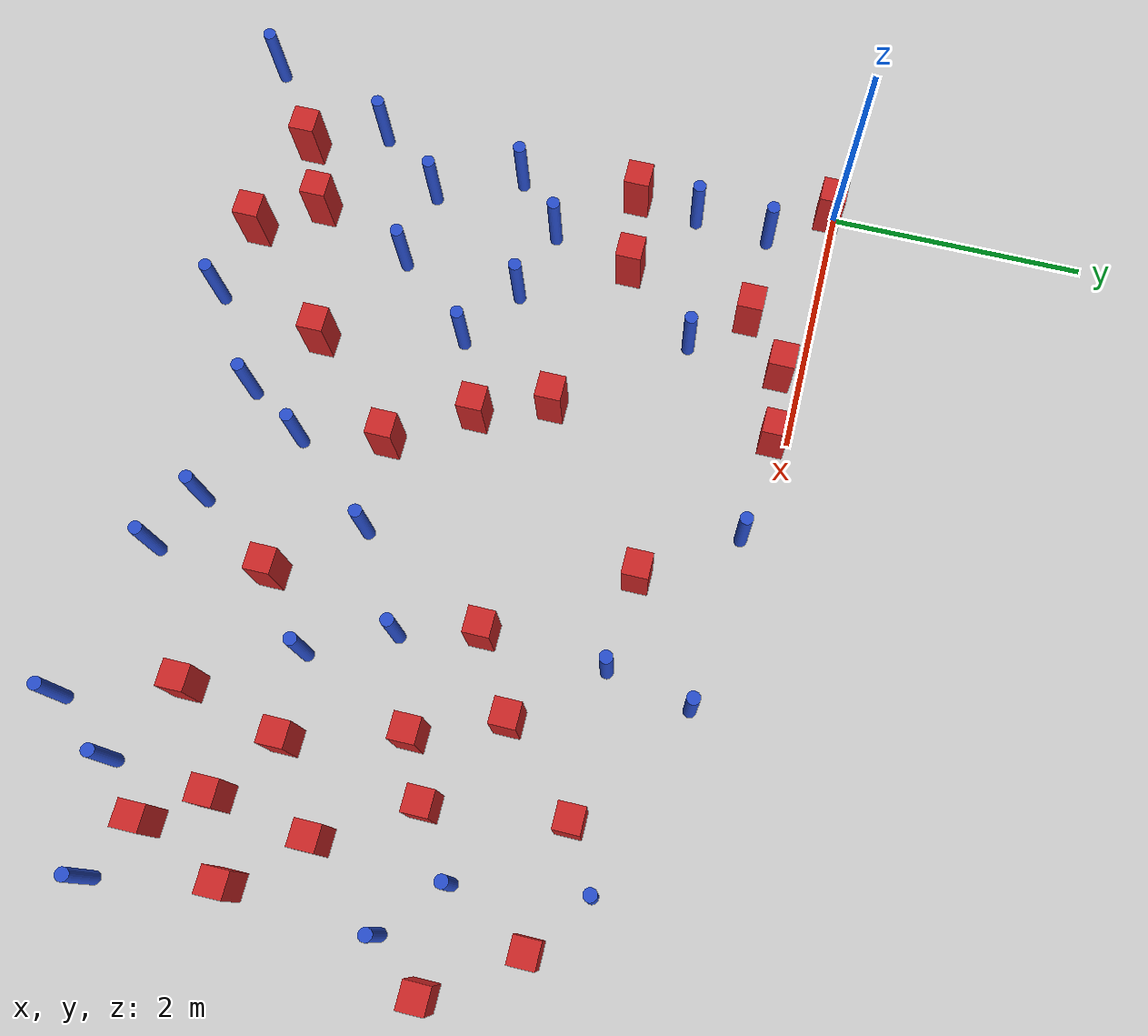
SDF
<sdf version="1.6">
 <world name="default">
  <model name="ground_plane">
   <static>1</static>
   <link name="link">
    <collision name="collision">
     <geometry><plane><normal>0 0 1</normal><size>100 100</size></plane></geometry>
     <surface><friction><ode><mu>100</mu><mu2>50</mu2></ode></friction></surface>
    </collision>
    <visual name="visual">
     <cast_shadows>0</cast_shadows>
     <geometry><plane><normal>0 0 1</normal><size>100 100</size></plane></geometry>
     <material>
      <ambient>1.0 1.0 1.0 1.0</ambient>
      <diffuse>0.8 0.8 0.8 1.0</diffuse>
      <specular>0.01 0.01 0.01 1.000000</specular>
     </material>
    </visual>
   </link>
  </model>
  <model name="square_post_obstacle0">
   <static>true</static>
   <pose>2.69655545007 -2.96752872048 -6.11067671241e-07 -5.50515727128e-06 -8.79689657224e-07 2.37013304536e-05</pose>
   <link name="link">
    <pose>0 0 0.25 0 -0 0</pose>
    <inertial>
     <mass>100</mass>
     <inertia>
      <ixx>0.166667</ixx>
      <ixy>0</ixy>
      <ixz>0</ixz>
      <iyy>0.166667</iyy>
      <iyz>0</iyz>
      <izz>0.166667</izz>
     </inertia>
    </inertial>
    <collision name="collision"><geometry><box><size>.2 .2 .5</size></box></geometry></collision>
    <visual name="visual">
     <geometry><box><size>.2 .2 .5</size></box></geometry>
     <material>
      <script><name>Gazebo/Red</name><uri>file://media/materials/scripts/gazebo.material</uri></script>
     </material>
    </visual>
   </link>
  </model>
  <model name="pole_obstacle0">
   <static>true</static>
   <pose>3.41426203181 -2.9291953358 -9.47619616065e-06 5.49618799737e-07 2.36310414051e-07 -1.55090534807e-07</pose>
   <link name="link">
    <pose>0 0 0.3 0 -0 0</pose>
    <inertial>
     <mass>1</mass>
     <inertia><ixx>0.145833</ixx><ixy>0</ixy><ixz>0</ixz><iyy>0.145833</iyy><iyz>0</iyz><izz>0.125</izz></inertia>
    </inertial>
    <collision name="collision">
     <geometry><cylinder><radius>0.05</radius><length>.6</length></cylinder></geometry>
    </collision>
    <visual name="visual">
     <geometry><cylinder><radius>0.05</radius><length>.6</length></cylinder></geometry>
     <material>
      <script><name>Gazebo/Blue</name><uri>file://media/materials/scripts/gazebo.material</uri></script>
     </material>
    </visual>
   </link>
  </model>
  <model name="square_post_obstacle3">
   <static>true</static>
   <pose>4.54777788087 -1.52727950527 -6.11067671241e-07 -5.50515727128e-06 -8.79689657224e-07 2.37013304536e-05</pose>
   <link name="link">
    <pose>0 0 0.25 0 -0 0</pose>
    <inertial>
     <mass>100</mass>
     <inertia>
      <ixx>0.166667</ixx>
      <ixy>0</ixy>
      <ixz>0</ixz>
      <iyy>0.166667</iyy>
      <iyz>0</iyz>
      <izz>0.166667</izz>
     </inertia>
    </inertial>
    <collision name="collision"><geometry><box><size>.2 .2 .5</size></box></geometry></collision>
    <visual name="visual">
     <geometry><box><size>.2 .2 .5</size></box></geometry>
     <material>
      <script><name>Gazebo/Red</name><uri>file://media/materials/scripts/gazebo.material</uri></script>
     </material>
    </visual>
   </link>
  </model>
  <model name="square_post_obstacle5">
   <static>true</static>
   <pose>5.80305898445 -3.83086714012 -6.11067671241e-07 -5.50515727128e-06 -8.79689657224e-07 2.37013304536e-05</pose>
   <link name="link">
    <pose>0 0 0.25 0 -0 0</pose>
    <inertial>
     <mass>100</mass>
     <inertia>
      <ixx>0.166667</ixx>
      <ixy>0</ixy>
      <ixz>0</ixz>
      <iyy>0.166667</iyy>
      <iyz>0</iyz>
      <izz>0.166667</izz>
     </inertia>
    </inertial>
    <collision name="collision"><geometry><box><size>.2 .2 .5</size></box></geometry></collision>
    <visual name="visual">
     <geometry><box><size>.2 .2 .5</size></box></geometry>
     <material>
      <script><name>Gazebo/Red</name><uri>file://media/materials/scripts/gazebo.material</uri></script>
     </material>
    </visual>
   </link>
  </model>
  <model name="square_post_obstacle6">
   <static>true</static>
   <pose>5.25804633106 -1.95155179132 -6.11067671241e-07 -5.50515727128e-06 -8.79689657224e-07 2.37013304536e-05</pose>
   <link name="link">
    <pose>0 0 0.25 0 -0 0</pose>
    <inertial>
     <mass>100</mass>
     <inertia>
      <ixx>0.166667</ixx>
      <ixy>0</ixy>
      <ixz>0</ixz>
      <iyy>0.166667</iyy>
      <iyz>0</iyz>
      <izz>0.166667</izz>
     </inertia>
    </inertial>
    <collision name="collision"><geometry><box><size>.2 .2 .5</size></box></geometry></collision>
    <visual name="visual">
     <geometry><box><size>.2 .2 .5</size></box></geometry>
     <material>
      <script><name>Gazebo/Red</name><uri>file://media/materials/scripts/gazebo.material</uri></script>
     </material>
    </visual>
   </link>
  </model>
  <model name="square_post_obstacle11">
   <static>true</static>
   <pose>5.52812265064 -3.40061100527 -6.11067671241e-07 -5.50515727128e-06 -8.79689657224e-07 2.37013304536e-05</pose>
   <link name="link">
    <pose>0 0 0.25 0 -0 0</pose>
    <inertial>
     <mass>100</mass>
     <inertia>
      <ixx>0.166667</ixx>
      <ixy>0</ixy>
      <ixz>0</ixz>
      <iyy>0.166667</iyy>
      <iyz>0</iyz>
      <izz>0.166667</izz>
     </inertia>
    </inertial>
    <collision name="collision"><geometry><box><size>.2 .2 .5</size></box></geometry></collision>
    <visual name="visual">
     <geometry><box><size>.2 .2 .5</size></box></geometry>
     <material>
      <script><name>Gazebo/Red</name><uri>file://media/materials/scripts/gazebo.material</uri></script>
     </material>
    </visual>
   </link>
  </model>
  <model name="square_post_obstacle16">
   <static>true</static>
   <pose>3.88686562413 -3.51782488606 -6.11067671241e-07 -5.50515727128e-06 -8.79689657224e-07 2.37013304536e-05</pose>
   <link name="link">
    <pose>0 0 0.25 0 -0 0</pose>
    <inertial>
     <mass>100</mass>
     <inertia>
      <ixx>0.166667</ixx>
      <ixy>0</ixy>
      <ixz>0</ixz>
      <iyy>0.166667</iyy>
      <iyz>0</iyz>
      <izz>0.166667</izz>
     </inertia>
    </inertial>
    <collision name="collision"><geometry><box><size>.2 .2 .5</size></box></geometry></collision>
    <visual name="visual">
     <geometry><box><size>.2 .2 .5</size></box></geometry>
     <material>
      <script><name>Gazebo/Red</name><uri>file://media/materials/scripts/gazebo.material</uri></script>
     </material>
    </visual>
   </link>
  </model>
  <model name="pole_obstacle17">
   <static>true</static>
   <pose>1.26234409407 -2.3121357814 -9.47619616065e-06 5.49618799737e-07 2.36310414062e-07 -1.55090534798e-07</pose>
   <link name="link">
    <pose>0 0 0.3 0 -0 0</pose>
    <inertial>
     <mass>1</mass>
     <inertia><ixx>0.145833</ixx><ixy>0</ixy><ixz>0</ixz><iyy>0.145833</iyy><iyz>0</iyz><izz>0.125</izz></inertia>
    </inertial>
    <collision name="collision">
     <geometry><cylinder><radius>0.05</radius><length>.6</length></cylinder></geometry>
    </collision>
    <visual name="visual">
     <geometry><cylinder><radius>0.05</radius><length>.6</length></cylinder></geometry>
     <material>
      <script><name>Gazebo/Blue</name><uri>file://media/materials/scripts/gazebo.material</uri></script>
     </material>
    </visual>
   </link>
  </model>
  <model name="pole_obstacle25">
   <static>true</static>
   <pose>5.11120807387 -4.71649495453 -9.47619616065e-06 5.49618799737e-07 2.36310414037e-07 -1.55090534814e-07</pose>
   <link name="link">
    <pose>0 0 0.3 0 -0 0</pose>
    <inertial>
     <mass>1</mass>
     <inertia><ixx>0.145833</ixx><ixy>0</ixy><ixz>0</ixz><iyy>0.145833</iyy><iyz>0</iyz><izz>0.125</izz></inertia>
    </inertial>
    <collision name="collision">
     <geometry><cylinder><radius>0.05</radius><length>.6</length></cylinder></geometry>
    </collision>
    <visual name="visual">
     <geometry><cylinder><radius>0.05</radius><length>.6</length></cylinder></geometry>
     <material>
      <script><name>Gazebo/Blue</name><uri>file://media/materials/scripts/gazebo.material</uri></script>
     </material>
    </visual>
   </link>
  </model>
  <model name="square_post_obstacle34">
   <static>true</static>
   <pose>1.99524082657 -3.71207581589 -6.11067671241e-07 -5.50515727128e-06 -8.79689657224e-07 2.37013304536e-05</pose>
   <link name="link">
    <pose>0 0 0.25 0 -0 0</pose>
    <inertial>
     <mass>100</mass>
     <inertia>
      <ixx>0.166667</ixx>
      <ixy>0</ixy>
      <ixz>0</ixz>
      <iyy>0.166667</iyy>
      <iyz>0</iyz>
      <izz>0.166667</izz>
     </inertia>
    </inertial>
    <collision name="collision"><geometry><box><size>.2 .2 .5</size></box></geometry></collision>
    <visual name="visual">
     <geometry><box><size>.2 .2 .5</size></box></geometry>
     <material>
      <script><name>Gazebo/Red</name><uri>file://media/materials/scripts/gazebo.material</uri></script>
     </material>
    </visual>
   </link>
  </model>
  <model name="pole_obstacle41">
   <static>true</static>
   <pose>2.52982006648 -4.10337523214 -9.47619616065e-06 5.49618799738e-07 2.3631041406e-07 -1.55090534801e-07</pose>
   <link name="link">
    <pose>0 0 0.3 0 -0 0</pose>
    <inertial>
     <mass>1</mass>
     <inertia><ixx>0.145833</ixx><ixy>0</ixy><ixz>0</ixz><iyy>0.145833</iyy><iyz>0</iyz><izz>0.125</izz></inertia>
    </inertial>
    <collision name="collision">
     <geometry><cylinder><radius>0.05</radius><length>.6</length></cylinder></geometry>
    </collision>
    <visual name="visual">
     <geometry><cylinder><radius>0.05</radius><length>.6</length></cylinder></geometry>
     <material>
      <script><name>Gazebo/Blue</name><uri>file://media/materials/scripts/gazebo.material</uri></script>
     </material>
    </visual>
   </link>
  </model>
  <model name="pole_obstacle44">
   <static>true</static>
   <pose>-0.271007146053 -4.75467692639 -9.47619616065e-06 5.49618799738e-07 2.36310414067e-07 -1.55090534795e-07</pose>
   <link name="link">
    <pose>0 0 0.3 0 -0 0</pose>
    <inertial>
     <mass>1</mass>
     <inertia><ixx>0.145833</ixx><ixy>0</ixy><ixz>0</ixz><iyy>0.145833</iyy><iyz>0</iyz><izz>0.125</izz></inertia>
    </inertial>
    <collision name="collision">
     <geometry><cylinder><radius>0.05</radius><length>.6</length></cylinder></geometry>
    </collision>
    <visual name="visual">
     <geometry><cylinder><radius>0.05</radius><length>.6</length></cylinder></geometry>
     <material>
      <script><name>Gazebo/Blue</name><uri>file://media/materials/scripts/gazebo.material</uri></script>
     </material>
    </visual>
   </link>
  </model>
  <model name="pole_obstacle49">
   <static>true</static>
   <pose>0.270599203035 -2.53424347779 -9.47619616065e-06 5.49618799737e-07 2.36310414065e-07 -1.55090534798e-07</pose>
   <link name="link">
    <pose>0 0 0.3 0 -0 0</pose>
    <inertial>
     <mass>1</mass>
     <inertia><ixx>0.145833</ixx><ixy>0</ixy><ixz>0</ixz><iyy>0.145833</iyy><iyz>0</iyz><izz>0.125</izz></inertia>
    </inertial>
    <collision name="collision">
     <geometry><cylinder><radius>0.05</radius><length>.6</length></cylinder></geometry>
    </collision>
    <visual name="visual">
     <geometry><cylinder><radius>0.05</radius><length>.6</length></cylinder></geometry>
     <material>
      <script><name>Gazebo/Blue</name><uri>file://media/materials/scripts/gazebo.material</uri></script>
     </material>
    </visual>
   </link>
  </model>
  <model name="square_post_obstacle52">
   <static>true</static>
   <pose>6.03663099695 -1.00682913807 -6.11067671241e-07 -5.50515727128e-06 -8.79689657224e-07 2.37013304536e-05</pose>
   <link name="link">
    <pose>0 0 0.25 0 -0 0</pose>
    <inertial>
     <mass>100</mass>
     <inertia>
      <ixx>0.166667</ixx>
      <ixy>0</ixy>
      <ixz>0</ixz>
      <iyy>0.166667</iyy>
      <iyz>0</iyz>
      <izz>0.166667</izz>
     </inertia>
    </inertial>
    <collision name="collision"><geometry><box><size>.2 .2 .5</size></box></geometry></collision>
    <visual name="visual">
     <geometry><box><size>.2 .2 .5</size></box></geometry>
     <material>
      <script><name>Gazebo/Red</name><uri>file://media/materials/scripts/gazebo.material</uri></script>
     </material>
    </visual>
   </link>
  </model>
  <model name="pole_obstacle51">
   <static>true</static>
   <pose>3.45128420298 -4.19065386213 -9.47619616065e-06 5.49618799738e-07 2.3631041406e-07 -1.55090534801e-07</pose>
   <link name="link">
    <pose>0 0 0.3 0 -0 0</pose>
    <inertial>
     <mass>1</mass>
     <inertia><ixx>0.145833</ixx><ixy>0</ixy><ixz>0</ixz><iyy>0.145833</iyy><iyz>0</iyz><izz>0.125</izz></inertia>
    </inertial>
    <collision name="collision">
     <geometry><cylinder><radius>0.05</radius><length>.6</length></cylinder></geometry>
    </collision>
    <visual name="visual">
     <geometry><cylinder><radius>0.05</radius><length>.6</length></cylinder></geometry>
     <material>
      <script><name>Gazebo/Blue</name><uri>file://media/materials/scripts/gazebo.material</uri></script>
     </material>
    </visual>
   </link>
  </model>
  <model name="pole_obstacle53">
   <static>true</static>
   <pose>1.80866382797 -4.60093404729 -9.47619616065e-06 5.49618799737e-07 2.36310414061e-07 -1.550905348e-07</pose>
   <link name="link">
    <pose>0 0 0.3 0 -0 0</pose>
    <inertial>
     <mass>1</mass>
     <inertia><ixx>0.145833</ixx><ixy>0</ixy><ixz>0</ixz><iyy>0.145833</iyy><iyz>0</iyz><izz>0.125</izz></inertia>
    </inertial>
    <collision name="collision">
     <geometry><cylinder><radius>0.05</radius><length>.6</length></cylinder></geometry>
    </collision>
    <visual name="visual">
     <geometry><cylinder><radius>0.05</radius><length>.6</length></cylinder></geometry>
     <material>
      <script><name>Gazebo/Blue</name><uri>file://media/materials/scripts/gazebo.material</uri></script>
     </material>
    </visual>
   </link>
  </model>
  <model name="pole_obstacle56">
   <static>true</static>
   <pose>5.58508234664 -0.667188749016 -9.47619616065e-06 5.49618799737e-07 2.36310414061e-07 -1.550905348e-07</pose>
   <link name="link">
    <pose>0 0 0.3 0 -0 0</pose>
    <inertial>
     <mass>1</mass>
     <inertia><ixx>0.145833</ixx><ixy>0</ixy><ixz>0</ixz><iyy>0.145833</iyy><iyz>0</iyz><izz>0.125</izz></inertia>
    </inertial>
    <collision name="collision">
     <geometry><cylinder><radius>0.05</radius><length>.6</length></cylinder></geometry>
    </collision>
    <visual name="visual">
     <geometry><cylinder><radius>0.05</radius><length>.6</length></cylinder></geometry>
     <material>
      <script><name>Gazebo/Blue</name><uri>file://media/materials/scripts/gazebo.material</uri></script>
     </material>
    </visual>
   </link>
  </model>
  <model name="pole_obstacle63">
   <static>true</static>
   <pose>1.1900801222 -3.26759631073 -9.47619616065e-06 5.49618799737e-07 2.36310414062e-07 -1.55090534798e-07</pose>
   <link name="link">
    <pose>0 0 0.3 0 -0 0</pose>
    <inertial>
     <mass>1</mass>
     <inertia><ixx>0.145833</ixx><ixy>0</ixy><ixz>0</ixz><iyy>0.145833</iyy><iyz>0</iyz><izz>0.125</izz></inertia>
    </inertial>
    <collision name="collision">
     <geometry><cylinder><radius>0.05</radius><length>.6</length></cylinder></geometry>
    </collision>
    <visual name="visual">
     <geometry><cylinder><radius>0.05</radius><length>.6</length></cylinder></geometry>
     <material>
      <script><name>Gazebo/Blue</name><uri>file://media/materials/scripts/gazebo.material</uri></script>
     </material>
    </visual>
   </link>
  </model>
  <model name="square_post_obstacle66">
   <static>true</static>
   <pose>6.47132975867 -1.6350133772 -6.11067671241e-07 -5.50515727128e-06 -8.79689657224e-07 2.37013304536e-05</pose>
   <link name="link">
    <pose>0 0 0.25 0 -0 0</pose>
    <inertial>
     <mass>100</mass>
     <inertia>
      <ixx>0.166667</ixx>
      <ixy>0</ixy>
      <ixz>0</ixz>
      <iyy>0.166667</iyy>
      <iyz>0</iyz>
      <izz>0.166667</izz>
     </inertia>
    </inertial>
    <collision name="collision"><geometry><box><size>.2 .2 .5</size></box></geometry></collision>
    <visual name="visual">
     <geometry><box><size>.2 .2 .5</size></box></geometry>
     <material>
      <script><name>Gazebo/Red</name><uri>file://media/materials/scripts/gazebo.material</uri></script>
     </material>
    </visual>
   </link>
  </model>
  <model name="square_post_obstacle70">
   <static>true</static>
   <pose>0.890267785708 -4.03336982815 -6.11067671241e-07 -5.50515727128e-06 -8.79689657224e-07 2.37013304536e-05</pose>
   <link name="link">
    <pose>0 0 0.25 0 -0 0</pose>
    <inertial>
     <mass>100</mass>
     <inertia>
      <ixx>0.166667</ixx>
      <ixy>0</ixy>
      <ixz>0</ixz>
      <iyy>0.166667</iyy>
      <iyz>0</iyz>
      <izz>0.166667</izz>
     </inertia>
    </inertial>
    <collision name="collision"><geometry><box><size>.2 .2 .5</size></box></geometry></collision>
    <visual name="visual">
     <geometry><box><size>.2 .2 .5</size></box></geometry>
     <material>
      <script><name>Gazebo/Red</name><uri>file://media/materials/scripts/gazebo.material</uri></script>
     </material>
    </visual>
   </link>
  </model>
  <model name="pole_obstacle68">
   <static>true</static>
   <pose>4.12603982861 -2.48367519057 -9.47619616065e-06 5.49618799738e-07 2.36310414051e-07 -1.55090534805e-07</pose>
   <link name="link">
    <pose>0 0 0.3 0 -0 0</pose>
    <inertial>
     <mass>1</mass>
     <inertia><ixx>0.145833</ixx><ixy>0</ixy><ixz>0</ixz><iyy>0.145833</iyy><iyz>0</iyz><izz>0.125</izz></inertia>
    </inertial>
    <collision name="collision">
     <geometry><cylinder><radius>0.05</radius><length>.6</length></cylinder></geometry>
    </collision>
    <visual name="visual">
     <geometry><cylinder><radius>0.05</radius><length>.6</length></cylinder></geometry>
     <material>
      <script><name>Gazebo/Blue</name><uri>file://media/materials/scripts/gazebo.material</uri></script>
     </material>
    </visual>
   </link>
  </model>
  <model name="pole_obstacle78">
   <static>true</static>
   <pose>2.8241408961 -0.188368687023 -9.47619616065e-06 5.49618799737e-07 2.36310414076e-07 -1.55090534792e-07</pose>
   <link name="link">
    <pose>0 0 0.3 0 -0 0</pose>
    <inertial>
     <mass>1</mass>
     <inertia><ixx>0.145833</ixx><ixy>0</ixy><ixz>0</ixz><iyy>0.145833</iyy><iyz>0</iyz><izz>0.125</izz></inertia>
    </inertial>
    <collision name="collision">
     <geometry><cylinder><radius>0.05</radius><length>.6</length></cylinder></geometry>
    </collision>
    <visual name="visual">
     <geometry><cylinder><radius>0.05</radius><length>.6</length></cylinder></geometry>
     <material>
      <script><name>Gazebo/Blue</name><uri>file://media/materials/scripts/gazebo.material</uri></script>
     </material>
    </visual>
   </link>
  </model>
  <model name="square_post_obstacle78">
   <static>true</static>
   <pose>5.65437554302 -2.63223949745 -6.11067671241e-07 -5.50515727128e-06 -8.79689657224e-07 2.37013304536e-05</pose>
   <link name="link">
    <pose>0 0 0.25 0 -0 0</pose>
    <inertial>
     <mass>100</mass>
     <inertia>
      <ixx>0.166667</ixx>
      <ixy>0</ixy>
      <ixz>0</ixz>
      <iyy>0.166667</iyy>
      <iyz>0</iyz>
      <izz>0.166667</izz>
     </inertia>
    </inertial>
    <collision name="collision"><geometry><box><size>.2 .2 .5</size></box></geometry></collision>
    <visual name="visual">
     <geometry><box><size>.2 .2 .5</size></box></geometry>
     <material>
      <script><name>Gazebo/Red</name><uri>file://media/materials/scripts/gazebo.material</uri></script>
     </material>
    </visual>
   </link>
  </model>
  <model name="square_post_obstacle83">
   <static>true</static>
   <pose>1.18338279445 -4.48964984773 -6.11067671241e-07 -5.50515727128e-06 -8.79689657224e-07 2.37013304536e-05</pose>
   <link name="link">
    <pose>0 0 0.25 0 -0 0</pose>
    <inertial>
     <mass>100</mass>
     <inertia>
      <ixx>0.166667</ixx>
      <ixy>0</ixy>
      <ixz>0</ixz>
      <iyy>0.166667</iyy>
      <iyz>0</iyz>
      <izz>0.166667</izz>
     </inertia>
    </inertial>
    <collision name="collision"><geometry><box><size>.2 .2 .5</size></box></geometry></collision>
    <visual name="visual">
     <geometry><box><size>.2 .2 .5</size></box></geometry>
     <material>
      <script><name>Gazebo/Red</name><uri>file://media/materials/scripts/gazebo.material</uri></script>
     </material>
    </visual>
   </link>
  </model>
  <model name="pole_obstacle100">
   <static>true</static>
   <pose>4.02866962804 -0.93376653429 -9.47619616065e-06 5.49618799738e-07 2.36310414072e-07 -1.55090534796e-07</pose>
   <link name="link">
    <pose>0 0 0.3 0 -0 0</pose>
    <inertial>
     <mass>1</mass>
     <inertia><ixx>0.145833</ixx><ixy>0</ixy><ixz>0</ixz><iyy>0.145833</iyy><iyz>0</iyz><izz>0.125</izz></inertia>
    </inertial>
    <collision name="collision">
     <geometry><cylinder><radius>0.05</radius><length>.6</length></cylinder></geometry>
    </collision>
    <visual name="visual">
     <geometry><cylinder><radius>0.05</radius><length>.6</length></cylinder></geometry>
     <material>
      <script><name>Gazebo/Blue</name><uri>file://media/materials/scripts/gazebo.material</uri></script>
     </material>
    </visual>
   </link>
  </model>
  <model name="pole_obstacle103">
   <static>true</static>
   <pose>0.330932705701 -0.492435063334 -9.47619616065e-06 5.49618799737e-07 2.3631041406e-07 -1.55090534801e-07</pose>
   <link name="link">
    <pose>0 0 0.3 0 -0 0</pose>
    <inertial>
     <mass>1</mass>
     <inertia><ixx>0.145833</ixx><ixy>0</ixy><ixz>0</ixz><iyy>0.145833</iyy><iyz>0</iyz><izz>0.125</izz></inertia>
    </inertial>
    <collision name="collision">
     <geometry><cylinder><radius>0.05</radius><length>.6</length></cylinder></geometry>
    </collision>
    <visual name="visual">
     <geometry><cylinder><radius>0.05</radius><length>.6</length></cylinder></geometry>
     <material>
      <script><name>Gazebo/Blue</name><uri>file://media/materials/scripts/gazebo.material</uri></script>
     </material>
    </visual>
   </link>
  </model>
  <model name="pole_obstacle106">
   <static>true</static>
   <pose>0.556680459288 -3.19464624157 -9.47619616065e-06 5.49618799737e-07 2.36310414066e-07 -1.55090534797e-07</pose>
   <link name="link">
    <pose>0 0 0.3 0 -0 0</pose>
    <inertial>
     <mass>1</mass>
     <inertia><ixx>0.145833</ixx><ixy>0</ixy><ixz>0</ixz><iyy>0.145833</iyy><iyz>0</iyz><izz>0.125</izz></inertia>
    </inertial>
    <collision name="collision">
     <geometry><cylinder><radius>0.05</radius><length>.6</length></cylinder></geometry>
    </collision>
    <visual name="visual">
     <geometry><cylinder><radius>0.05</radius><length>.6</length></cylinder></geometry>
     <material>
      <script><name>Gazebo/Blue</name><uri>file://media/materials/scripts/gazebo.material</uri></script>
     </material>
    </visual>
   </link>
  </model>
  <model name="pole_obstacle118">
   <static>true</static>
   <pose>0.6861154543 -2.15564879666 -9.47619616065e-06 5.49618799737e-07 2.36310414066e-07 -1.55090534797e-07</pose>
   <link name="link">
    <pose>0 0 0.3 0 -0 0</pose>
    <inertial>
     <mass>1</mass>
     <inertia><ixx>0.145833</ixx><ixy>0</ixy><ixz>0</ixz><iyy>0.145833</iyy><iyz>0</iyz><izz>0.125</izz></inertia>
    </inertial>
    <collision name="collision">
     <geometry><cylinder><radius>0.05</radius><length>.6</length></cylinder></geometry>
    </collision>
    <visual name="visual">
     <geometry><cylinder><radius>0.05</radius><length>.6</length></cylinder></geometry>
     <material>
      <script><name>Gazebo/Blue</name><uri>file://media/materials/scripts/gazebo.material</uri></script>
     </material>
    </visual>
   </link>
  </model>
  <model name="square_post_obstacle103">
   <static>true</static>
   <pose>2.33784049144 -2.36936704761 -6.11067671241e-07 -5.50515727128e-06 -8.79689657224e-07 2.37013304536e-05</pose>
   <link name="link">
    <pose>0 0 0.25 0 -0 0</pose>
    <inertial>
     <mass>100</mass>
     <inertia>
      <ixx>0.166667</ixx>
      <ixy>0</ixy>
      <ixz>0</ixz>
      <iyy>0.166667</iyy>
      <iyz>0</iyz>
      <izz>0.166667</izz>
     </inertia>
    </inertial>
    <collision name="collision"><geometry><box><size>.2 .2 .5</size></box></geometry></collision>
    <visual name="visual">
     <geometry><box><size>.2 .2 .5</size></box></geometry>
     <material>
      <script><name>Gazebo/Red</name><uri>file://media/materials/scripts/gazebo.material</uri></script>
     </material>
    </visual>
   </link>
  </model>
  <model name="square_post_obstacle105">
   <static>true</static>
   <pose>2.12561929806 -1.82076457471 -6.11067671241e-07 -5.50515727128e-06 -8.79689657224e-07 2.37013304536e-05</pose>
   <link name="link">
    <pose>0 0 0.25 0 -0 0</pose>
    <inertial>
     <mass>100</mass>
     <inertia>
      <ixx>0.166667</ixx>
      <ixy>0</ixy>
      <ixz>0</ixz>
      <iyy>0.166667</iyy>
      <iyz>0</iyz>
      <izz>0.166667</izz>
     </inertia>
    </inertial>
    <collision name="collision"><geometry><box><size>.2 .2 .5</size></box></geometry></collision>
    <visual name="visual">
     <geometry><box><size>.2 .2 .5</size></box></geometry>
     <material>
      <script><name>Gazebo/Red</name><uri>file://media/materials/scripts/gazebo.material</uri></script>
     </material>
    </visual>
   </link>
  </model>
  <model name="square_post_obstacle109">
   <static>true</static>
   <pose>3.30124826271 -0.878200812186 -6.11067671241e-07 -5.50515727128e-06 -8.79689657224e-07 2.37013304536e-05</pose>
   <link name="link">
    <pose>0 0 0.25 0 -0 0</pose>
    <inertial>
     <mass>100</mass>
     <inertia>
      <ixx>0.166667</ixx>
      <ixy>0</ixy>
      <ixz>0</ixz>
      <iyy>0.166667</iyy>
      <iyz>0</iyz>
      <izz>0.166667</izz>
     </inertia>
    </inertial>
    <collision name="collision"><geometry><box><size>.2 .2 .5</size></box></geometry></collision>
    <visual name="visual">
     <geometry><box><size>.2 .2 .5</size></box></geometry>
     <material>
      <script><name>Gazebo/Red</name><uri>file://media/materials/scripts/gazebo.material</uri></script>
     </material>
    </visual>
   </link>
  </model>
  <model name="square_post_obstacle110">
   <static>true</static>
   <pose>5.13230458625 -0.926404389919 -6.11067671241e-07 -5.50515727128e-06 -8.79689657224e-07 2.37013304536e-05</pose>
   <link name="link">
    <pose>0 0 0.25 0 -0 0</pose>
    <inertial>
     <mass>100</mass>
     <inertia>
      <ixx>0.166667</ixx>
      <ixy>0</ixy>
      <ixz>0</ixz>
      <iyy>0.166667</iyy>
      <iyz>0</iyz>
      <izz>0.166667</izz>
     </inertia>
    </inertial>
    <collision name="collision"><geometry><box><size>.2 .2 .5</size></box></geometry></collision>
    <visual name="visual">
     <geometry><box><size>.2 .2 .5</size></box></geometry>
     <material>
      <script><name>Gazebo/Red</name><uri>file://media/materials/scripts/gazebo.material</uri></script>
     </material>
    </visual>
   </link>
  </model>
  <model name="pole_obstacle120">
   <static>true</static>
   <pose>6.26103983973 -4.08631965927 -9.47619616065e-06 5.49618799737e-07 2.36310414037e-07 -1.55090534814e-07</pose>
   <link name="link">
    <pose>0 0 0.3 0 -0 0</pose>
    <inertial>
     <mass>1</mass>
     <inertia><ixx>0.145833</ixx><ixy>0</ixy><ixz>0</ixz><iyy>0.145833</iyy><iyz>0</iyz><izz>0.125</izz></inertia>
    </inertial>
    <collision name="collision">
     <geometry><cylinder><radius>0.05</radius><length>.6</length></cylinder></geometry>
    </collision>
    <visual name="visual">
     <geometry><cylinder><radius>0.05</radius><length>.6</length></cylinder></geometry>
     <material>
      <script><name>Gazebo/Blue</name><uri>file://media/materials/scripts/gazebo.material</uri></script>
     </material>
    </visual>
   </link>
  </model>
  <model name="pole_obstacle122">
   <static>true</static>
   <pose>4.40908479328 -3.10094637195 -9.47619616065e-06 5.49618799738e-07 2.36310414051e-07 -1.55090534805e-07</pose>
   <link name="link">
    <pose>0 0 0.3 0 -0 0</pose>
    <inertial>
     <mass>1</mass>
     <inertia><ixx>0.145833</ixx><ixy>0</ixy><ixz>0</ixz><iyy>0.145833</iyy><iyz>0</iyz><izz>0.125</izz></inertia>
    </inertial>
    <collision name="collision">
     <geometry><cylinder><radius>0.05</radius><length>.6</length></cylinder></geometry>
    </collision>
    <visual name="visual">
     <geometry><cylinder><radius>0.05</radius><length>.6</length></cylinder></geometry>
     <material>
      <script><name>Gazebo/Blue</name><uri>file://media/materials/scripts/gazebo.material</uri></script>
     </material>
    </visual>
   </link>
  </model>
  <model name="pole_obstacle128">
   <static>true</static>
   <pose>1.74630896064 -2.63615672611 -9.47619616065e-06 5.49618799737e-07 2.36310414062e-07 -1.55090534798e-07</pose>
   <link name="link">
    <pose>0 0 0.3 0 -0 0</pose>
    <inertial>
     <mass>1</mass>
     <inertia><ixx>0.145833</ixx><ixy>0</ixy><ixz>0</ixz><iyy>0.145833</iyy><iyz>0</iyz><izz>0.125</izz></inertia>
    </inertial>
    <collision name="collision">
     <geometry><cylinder><radius>0.05</radius><length>.6</length></cylinder></geometry>
    </collision>
    <visual name="visual">
     <geometry><cylinder><radius>0.05</radius><length>.6</length></cylinder></geometry>
     <material>
      <script><name>Gazebo/Blue</name><uri>file://media/materials/scripts/gazebo.material</uri></script>
     </material>
    </visual>
   </link>
  </model>
  <model name="square_post_obstacle118">
   <static>true</static>
   <pose>0.220975902893 -1.58294587684 -6.11067671241e-07 -5.50515727128e-06 -8.79689657224e-07 2.37013304536e-05</pose>
   <link name="link">
    <pose>0 0 0.25 0 -0 0</pose>
    <inertial>
     <mass>100</mass>
     <inertia>
      <ixx>0.166667</ixx>
      <ixy>0</ixy>
      <ixz>0</ixz>
      <iyy>0.166667</iyy>
      <iyz>0</iyz>
      <izz>0.166667</izz>
     </inertia>
    </inertial>
    <collision name="collision"><geometry><box><size>.2 .2 .5</size></box></geometry></collision>
    <visual name="visual">
     <geometry><box><size>.2 .2 .5</size></box></geometry>
     <material>
      <script><name>Gazebo/Red</name><uri>file://media/materials/scripts/gazebo.material</uri></script>
     </material>
    </visual>
   </link>
  </model>
  <model name="pole_obstacle139">
   <static>true</static>
   <pose>4.1655203504 -0.283180113197 -9.47619616065e-06 5.49618799737e-07 2.36310414075e-07 -1.55090534794e-07</pose>
   <link name="link">
    <pose>0 0 0.3 0 -0 0</pose>
    <inertial>
     <mass>1</mass>
     <inertia><ixx>0.145833</ixx><ixy>0</ixy><ixz>0</ixz><iyy>0.145833</iyy><iyz>0</iyz><izz>0.125</izz></inertia>
    </inertial>
    <collision name="collision">
     <geometry><cylinder><radius>0.05</radius><length>.6</length></cylinder></geometry>
    </collision>
    <visual name="visual">
     <geometry><cylinder><radius>0.05</radius><length>.6</length></cylinder></geometry>
     <material>
      <script><name>Gazebo/Blue</name><uri>file://media/materials/scripts/gazebo.material</uri></script>
     </material>
    </visual>
   </link>
  </model>
  <model name="square_post_obstacle130">
   <static>true</static>
   <pose>1.05873128331 -0.501565969235 -6.11067671241e-07 -5.50515727128e-06 -8.79689657224e-07 2.37013304536e-05</pose>
   <link name="link">
    <pose>0 0 0.25 0 -0 0</pose>
    <inertial>
     <mass>100</mass>
     <inertia>
      <ixx>0.166667</ixx>
      <ixy>0</ixy>
      <ixz>0</ixz>
      <iyy>0.166667</iyy>
      <iyz>0</iyz>
      <izz>0.166667</izz>
     </inertia>
    </inertial>
    <collision name="collision"><geometry><box><size>.2 .2 .5</size></box></geometry></collision>
    <visual name="visual">
     <geometry><box><size>.2 .2 .5</size></box></geometry>
     <material>
      <script><name>Gazebo/Red</name><uri>file://media/materials/scripts/gazebo.material</uri></script>
     </material>
    </visual>
   </link>
  </model>
  <model name="pole_obstacle152">
   <static>true</static>
   <pose>0.126690406617 -3.73206614092 -9.4761961606e-06 5.49618799729e-07 2.36310413998e-07 -1.55090534824e-07</pose>
   <link name="link">
    <pose>0 0 0.3 0 -0 0</pose>
    <inertial>
     <mass>1</mass>
     <inertia><ixx>0.145833</ixx><ixy>0</ixy><ixz>0</ixz><iyy>0.145833</iyy><iyz>0</iyz><izz>0.125</izz></inertia>
    </inertial>
    <collision name="collision">
     <geometry><cylinder><radius>0.05</radius><length>.6</length></cylinder></geometry>
    </collision>
    <visual name="visual">
     <geometry><cylinder><radius>0.05</radius><length>.6</length></cylinder></geometry>
     <material>
      <script><name>Gazebo/Blue</name><uri>file://media/materials/scripts/gazebo.material</uri></script>
     </material>
    </visual>
   </link>
  </model>
  <model name="square_post_obstacle153">
   <static>true</static>
   <pose>2.01516779968 -0.113476145367 -6.11067671241e-07 -5.50515727128e-06 -8.79689657224e-07 2.37013304536e-05</pose>
   <link name="link">
    <pose>0 0 0.25 0 -0 0</pose>
    <inertial>
     <mass>100</mass>
     <inertia>
      <ixx>0.166667</ixx>
      <ixy>0</ixy>
      <ixz>0</ixz>
      <iyy>0.166667</iyy>
      <iyz>0</iyz>
      <izz>0.166667</izz>
     </inertia>
    </inertial>
    <collision name="collision"><geometry><box><size>.2 .2 .5</size></box></geometry></collision>
    <visual name="visual">
     <geometry><box><size>.2 .2 .5</size></box></geometry>
     <material>
      <script><name>Gazebo/Red</name><uri>file://media/materials/scripts/gazebo.material</uri></script>
     </material>
    </visual>
   </link>
  </model>
  <model name="pole_obstacle160">
   <static>true</static>
   <pose>5.45667483235 -4.20318716458 -9.47619616065e-06 5.49618799737e-07 2.36310414037e-07 -1.55090534814e-07</pose>
   <link name="link">
    <pose>0 0 0.3 0 -0 0</pose>
    <inertial>
     <mass>1</mass>
     <inertia><ixx>0.145833</ixx><ixy>0</ixy><ixz>0</ixz><iyy>0.145833</iyy><iyz>0</iyz><izz>0.125</izz></inertia>
    </inertial>
    <collision name="collision">
     <geometry><cylinder><radius>0.05</radius><length>.6</length></cylinder></geometry>
    </collision>
    <visual name="visual">
     <geometry><cylinder><radius>0.05</radius><length>.6</length></cylinder></geometry>
     <material>
      <script><name>Gazebo/Blue</name><uri>file://media/materials/scripts/gazebo.material</uri></script>
     </material>
    </visual>
   </link>
  </model>
  <model name="square_post_obstacle154">
   <static>true</static>
   <pose>4.82800781957 -3.84647351708 -6.11067671241e-07 -5.50515727128e-06 -8.79689657224e-07 2.37013304536e-05</pose>
   <link name="link">
    <pose>0 0 0.25 0 -0 0</pose>
    <inertial>
     <mass>100</mass>
     <inertia>
      <ixx>0.166667</ixx>
      <ixy>0</ixy>
      <ixz>0</ixz>
      <iyy>0.166667</iyy>
      <iyz>0</iyz>
      <izz>0.166667</izz>
     </inertia>
    </inertial>
    <collision name="collision"><geometry><box><size>.2 .2 .5</size></box></geometry></collision>
    <visual name="visual">
     <geometry><box><size>.2 .2 .5</size></box></geometry>
     <material>
      <script><name>Gazebo/Red</name><uri>file://media/materials/scripts/gazebo.material</uri></script>
     </material>
    </visual>
   </link>
  </model>
  <model name="square_post_obstacle157">
   <static>true</static>
   <pose>0.359356844409 -4.29110876025 -6.11067671241e-07 -5.50515727128e-06 -8.79689657224e-07 2.37013304536e-05</pose>
   <link name="link">
    <pose>0 0 0.25 0 -0 0</pose>
    <inertial>
     <mass>100</mass>
     <inertia>
      <ixx>0.166667</ixx>
      <ixy>0</ixy>
      <ixz>0</ixz>
      <iyy>0.166667</iyy>
      <iyz>0</iyz>
      <izz>0.166667</izz>
     </inertia>
    </inertial>
    <collision name="collision"><geometry><box><size>.2 .2 .5</size></box></geometry></collision>
    <visual name="visual">
     <geometry><box><size>.2 .2 .5</size></box></geometry>
     <material>
      <script><name>Gazebo/Red</name><uri>file://media/materials/scripts/gazebo.material</uri></script>
     </material>
    </visual>
   </link>
  </model>
  <model name="pole_obstacle165">
   <static>true</static>
   <pose>5.72815047873 -1.64111974993 -9.47619616065e-06 5.49618799738e-07 2.36310414071e-07 -1.55090534796e-07</pose>
   <link name="link">
    <pose>0 0 0.3 0 -0 0</pose>
    <inertial>
     <mass>1</mass>
     <inertia><ixx>0.145833</ixx><ixy>0</ixy><ixz>0</ixz><iyy>0.145833</iyy><iyz>0</iyz><izz>0.125</izz></inertia>
    </inertial>
    <collision name="collision">
     <geometry><cylinder><radius>0.05</radius><length>.6</length></cylinder></geometry>
    </collision>
    <visual name="visual">
     <geometry><cylinder><radius>0.05</radius><length>.6</length></cylinder></geometry>
     <material>
      <script><name>Gazebo/Blue</name><uri>file://media/materials/scripts/gazebo.material</uri></script>
     </material>
    </visual>
   </link>
  </model>
  <model name="pole_obstacle166">
   <static>true</static>
   <pose>0.282425872798 -1.08638100702 -9.47619616065e-06 5.49618799737e-07 2.36310414064e-07 -1.55090534797e-07</pose>
   <link name="link">
    <pose>0 0 0.3 0 -0 0</pose>
    <inertial>
     <mass>1</mass>
     <inertia><ixx>0.145833</ixx><ixy>0</ixy><ixz>0</ixz><iyy>0.145833</iyy><iyz>0</iyz><izz>0.125</izz></inertia>
    </inertial>
    <collision name="collision">
     <geometry><cylinder><radius>0.05</radius><length>.6</length></cylinder></geometry>
    </collision>
    <visual name="visual">
     <geometry><cylinder><radius>0.05</radius><length>.6</length></cylinder></geometry>
     <material>
      <script><name>Gazebo/Blue</name><uri>file://media/materials/scripts/gazebo.material</uri></script>
     </material>
    </visual>
   </link>
  </model>
  <model name="pole_obstacle170">
   <static>true</static>
   <pose>1.3830502254 -0.911424480113 -9.47619616065e-06 5.49618799737e-07 2.36310414065e-07 -1.55090534798e-07</pose>
   <link name="link">
    <pose>0 0 0.3 0 -0 0</pose>
    <inertial>
     <mass>1</mass>
     <inertia><ixx>0.145833</ixx><ixy>0</ixy><ixz>0</ixz><iyy>0.145833</iyy><iyz>0</iyz><izz>0.125</izz></inertia>
    </inertial>
    <collision name="collision">
     <geometry><cylinder><radius>0.05</radius><length>.6</length></cylinder></geometry>
    </collision>
    <visual name="visual">
     <geometry><cylinder><radius>0.05</radius><length>.6</length></cylinder></geometry>
     <material>
      <script><name>Gazebo/Blue</name><uri>file://media/materials/scripts/gazebo.material</uri></script>
     </material>
    </visual>
   </link>
  </model>
  <model name="pole_obstacle183">
   <static>true</static>
   <pose>2.82857022989 -3.63030047282 -9.47619616065e-06 5.49618799737e-07 2.36310414051e-07 -1.55090534807e-07</pose>
   <link name="link">
    <pose>0 0 0.3 0 -0 0</pose>
    <inertial>
     <mass>1</mass>
     <inertia><ixx>0.145833</ixx><ixy>0</ixy><ixz>0</ixz><iyy>0.145833</iyy><iyz>0</iyz><izz>0.125</izz></inertia>
    </inertial>
    <collision name="collision">
     <geometry><cylinder><radius>0.05</radius><length>.6</length></cylinder></geometry>
    </collision>
    <visual name="visual">
     <geometry><cylinder><radius>0.05</radius><length>.6</length></cylinder></geometry>
     <material>
      <script><name>Gazebo/Blue</name><uri>file://media/materials/scripts/gazebo.material</uri></script>
     </material>
    </visual>
   </link>
  </model>
  <model name="square_post_obstacle177">
   <static>true</static>
   <pose>0.857595847188 -1.50076244315 -6.11067671241e-07 -5.50515727128e-06 -8.79689657224e-07 2.37013304536e-05</pose>
   <link name="link">
    <pose>0 0 0.25 0 -0 0</pose>
    <inertial>
     <mass>100</mass>
     <inertia>
      <ixx>0.166667</ixx>
      <ixy>0</ixy>
      <ixz>0</ixz>
      <iyy>0.166667</iyy>
      <iyz>0</iyz>
      <izz>0.166667</izz>
     </inertia>
    </inertial>
    <collision name="collision"><geometry><box><size>.2 .2 .5</size></box></geometry></collision>
    <visual name="visual">
     <geometry><box><size>.2 .2 .5</size></box></geometry>
     <material>
      <script><name>Gazebo/Red</name><uri>file://media/materials/scripts/gazebo.material</uri></script>
     </material>
    </visual>
   </link>
  </model>
  <model name="square_post_obstacle190">
   <static>true</static>
   <pose>3.97059572391 -1.87187199308 -6.11067671241e-07 -5.50515727128e-06 -8.79689657224e-07 2.37013304536e-05</pose>
   <link name="link">
    <pose>0 0 0.25 0 -0 0</pose>
    <inertial>
     <mass>100</mass>
     <inertia>
      <ixx>0.166667</ixx>
      <ixy>0</ixy>
      <ixz>0</ixz>
      <iyy>0.166667</iyy>
      <iyz>0</iyz>
      <izz>0.166667</izz>
     </inertia>
    </inertial>
    <collision name="collision"><geometry><box><size>.2 .2 .5</size></box></geometry></collision>
    <visual name="visual">
     <geometry><box><size>.2 .2 .5</size></box></geometry>
     <material>
      <script><name>Gazebo/Red</name><uri>file://media/materials/scripts/gazebo.material</uri></script>
     </material>
    </visual>
   </link>
  </model>
  <model name="square_post_obstacle200">
   <static>true</static>
   <pose>4.80678676696 -2.17725676219 -6.11067671241e-07 -5.50515727128e-06 -8.79689657224e-07 2.37013304536e-05</pose>
   <link name="link">
    <pose>0 0 0.25 0 -0 0</pose>
    <inertial>
     <mass>100</mass>
     <inertia>
      <ixx>0.166667</ixx>
      <ixy>0</ixy>
      <ixz>0</ixz>
      <iyy>0.166667</iyy>
      <iyz>0</iyz>
      <izz>0.166667</izz>
     </inertia>
    </inertial>
    <collision name="collision"><geometry><box><size>.2 .2 .5</size></box></geometry></collision>
    <visual name="visual">
     <geometry><box><size>.2 .2 .5</size></box></geometry>
     <material>
      <script><name>Gazebo/Red</name><uri>file://media/materials/scripts/gazebo.material</uri></script>
     </material>
    </visual>
   </link>
  </model>
  <model name="square_post_obstacle201">
   <static>true</static>
   <pose>1.46943746202 -0.172719481804 -6.11067671241e-07 -5.50515727128e-06 -8.79689657224e-07 2.37013304536e-05</pose>
   <link name="link">
    <pose>0 0 0.25 0 -0 0</pose>
    <inertial>
     <mass>100</mass>
     <inertia>
      <ixx>0.166667</ixx>
      <ixy>0</ixy>
      <ixz>0</ixz>
      <iyy>0.166667</iyy>
      <iyz>0</iyz>
      <izz>0.166667</izz>
     </inertia>
    </inertial>
    <collision name="collision"><geometry><box><size>.2 .2 .5</size></box></geometry></collision>
    <visual name="visual">
     <geometry><box><size>.2 .2 .5</size></box></geometry>
     <material>
      <script><name>Gazebo/Red</name><uri>file://media/materials/scripts/gazebo.material</uri></script>
     </material>
    </visual>
   </link>
  </model>
  <model name="pole_obstacle188">
   <static>true</static>
   <pose>3.89775874076 -4.4184718694 -9.47619616065e-06 5.49618799738e-07 2.3631041406e-07 -1.55090534801e-07</pose>
   <link name="link">
    <pose>0 0 0.3 0 -0 0</pose>
    <inertial>
     <mass>1</mass>
     <inertia><ixx>0.145833</ixx><ixy>0</ixy><ixz>0</ixz><iyy>0.145833</iyy><iyz>0</iyz><izz>0.125</izz></inertia>
    </inertial>
    <collision name="collision">
     <geometry><cylinder><radius>0.05</radius><length>.6</length></cylinder></geometry>
    </collision>
    <visual name="visual">
     <geometry><cylinder><radius>0.05</radius><length>.6</length></cylinder></geometry>
     <material>
      <script><name>Gazebo/Blue</name><uri>file://media/materials/scripts/gazebo.material</uri></script>
     </material>
    </visual>
   </link>
  </model>
  <model name="square_post_obstacle207">
   <static>true</static>
   <pose>6.08475664446 -3.14026501387 -6.11067671241e-07 -5.50515727128e-06 -8.79689657224e-07 2.37013304536e-05</pose>
   <link name="link">
    <pose>0 0 0.25 0 -0 0</pose>
    <inertial>
     <mass>100</mass>
     <inertia>
      <ixx>0.166667</ixx>
      <ixy>0</ixy>
      <ixz>0</ixz>
      <iyy>0.166667</iyy>
      <iyz>0</iyz>
      <izz>0.166667</izz>
     </inertia>
    </inertial>
    <collision name="collision"><geometry><box><size>.2 .2 .5</size></box></geometry></collision>
    <visual name="visual">
     <geometry><box><size>.2 .2 .5</size></box></geometry>
     <material>
      <script><name>Gazebo/Red</name><uri>file://media/materials/scripts/gazebo.material</uri></script>
     </material>
    </visual>
   </link>
  </model>
  <model name="square_post_obstacle213">
   <static>true</static>
   <pose>0.018186738397 -0.0556876828815 -6.11067671241e-07 -5.50515727128e-06 -8.79689657224e-07 2.37013304536e-05</pose>
   <link name="link">
    <pose>0 0 0.25 0 -0 0</pose>
    <inertial>
     <mass>100</mass>
     <inertia>
      <ixx>0.166667</ixx>
      <ixy>0</ixy>
      <ixz>0</ixz>
      <iyy>0.166667</iyy>
      <iyz>0</iyz>
      <izz>0.166667</izz>
     </inertia>
    </inertial>
    <collision name="collision"><geometry><box><size>.2 .2 .5</size></box></geometry></collision>
    <visual name="visual">
     <geometry><box><size>.2 .2 .5</size></box></geometry>
     <material>
      <script><name>Gazebo/Red</name><uri>file://media/materials/scripts/gazebo.material</uri></script>
     </material>
    </visual>
   </link>
  </model>
  <model name="pole_obstacle211">
   <static>true</static>
   <pose>6.16373641867 -2.03243987258 -9.47619616065e-06 5.49618799737e-07 2.36310414063e-07 -1.55090534798e-07</pose>
   <link name="link">
    <pose>0 0 0.3 0 -0 0</pose>
    <inertial>
     <mass>1</mass>
     <inertia><ixx>0.145833</ixx><ixy>0</ixy><ixz>0</ixz><iyy>0.145833</iyy><iyz>0</iyz><izz>0.125</izz></inertia>
    </inertial>
    <collision name="collision">
     <geometry><cylinder><radius>0.05</radius><length>.6</length></cylinder></geometry>
    </collision>
    <visual name="visual">
     <geometry><cylinder><radius>0.05</radius><length>.6</length></cylinder></geometry>
     <material>
      <script><name>Gazebo/Blue</name><uri>file://media/materials/scripts/gazebo.material</uri></script>
     </material>
    </visual>
   </link>
  </model>
  <model name="square_post_obstacle226">
   <static>true</static>
   <pose>5.0415999502 -3.04821002312 -6.11067671241e-07 -5.50515727128e-06 -8.79689657224e-07 2.37013304536e-05</pose>
   <link name="link">
    <pose>0 0 0.25 0 -0 0</pose>
    <inertial>
     <mass>100</mass>
     <inertia>
      <ixx>0.166667</ixx>
      <ixy>0</ixy>
      <ixz>0</ixz>
      <iyy>0.166667</iyy>
      <iyz>0</iyz>
      <izz>0.166667</izz>
     </inertia>
    </inertial>
    <collision name="collision"><geometry><box><size>.2 .2 .5</size></box></geometry></collision>
    <visual name="visual">
     <geometry><box><size>.2 .2 .5</size></box></geometry>
     <material>
      <script><name>Gazebo/Red</name><uri>file://media/materials/scripts/gazebo.material</uri></script>
     </material>
    </visual>
   </link>
  </model>
 </world>
</sdf>
